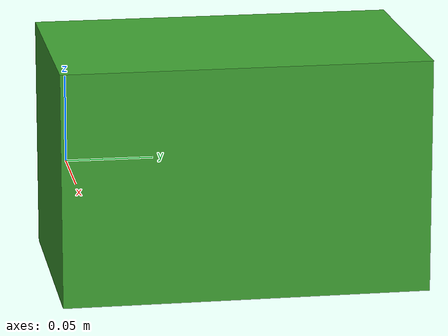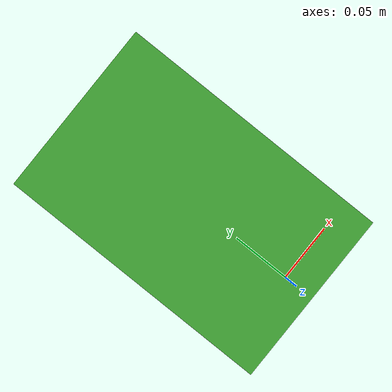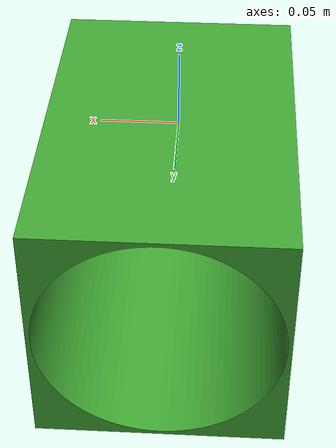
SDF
<sdf version="1.6">
  <model name="milo_tin">
    <static>true</static>
    <link name="link">
      <visual name="visual">
        <geometry>
          <mesh>
            <uri>meshes/milo_tin.stl</uri>
            <scale>0.001 0.001 0.001</scale>
          </mesh>
        </geometry>
        <material>
          <ambient>0.2 0.6 0.15 1</ambient>
          <diffuse>0.25 0.65 0.2 1</diffuse>
          <specular>0.3 0.3 0.3 1</specular>
        </material>
      </visual>
      <collision name="collision">
        <geometry>
          <cylinder>
            <radius>0.0673</radius>
            <length>0.210</length>
          </cylinder>
        </geometry>
      </collision>
    </link>
  </model>
</sdf>
